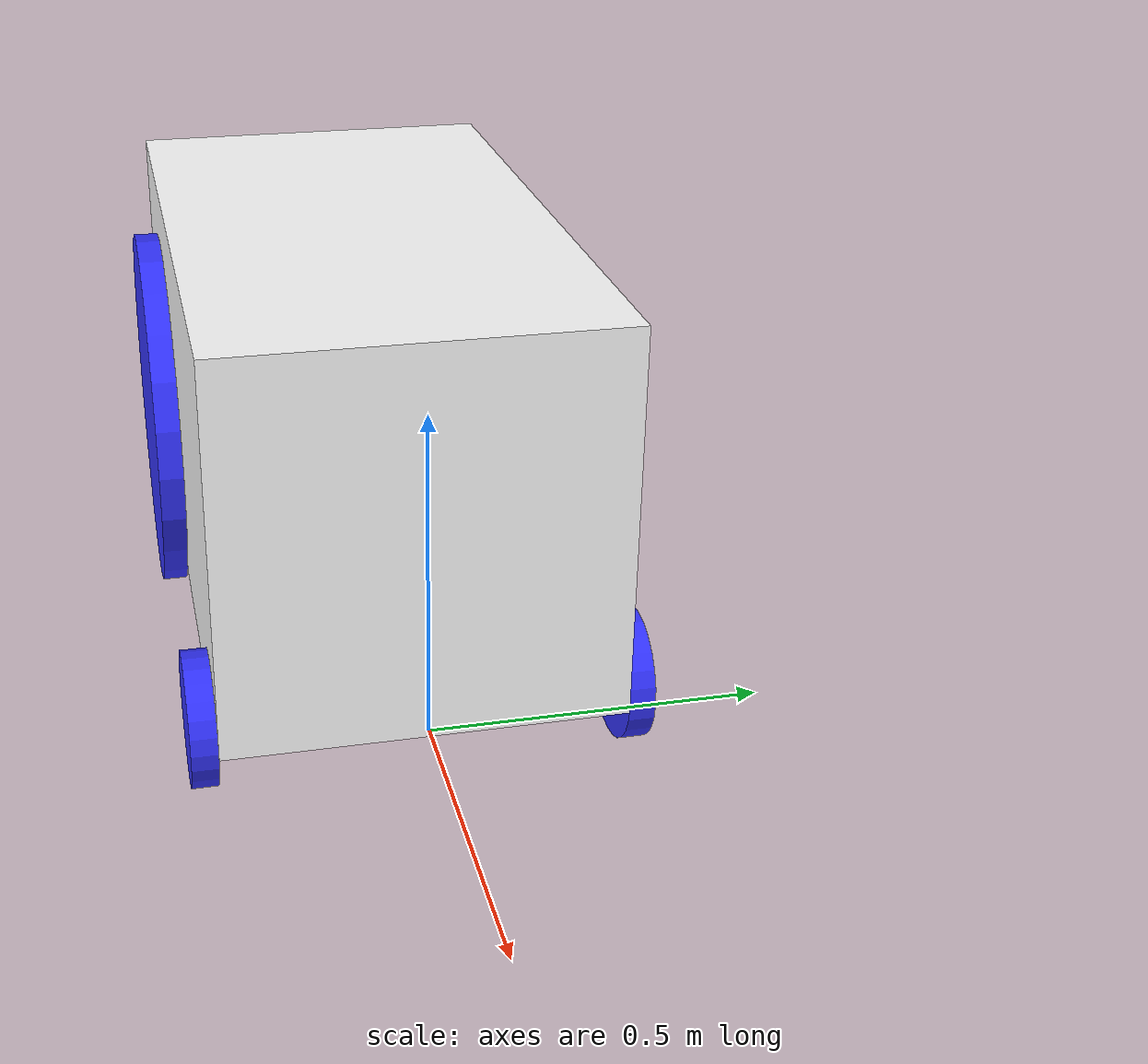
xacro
<?xml version="1.0"?>
<robot xmlns:xacro="http://www.ros.org/wiki/xacro" >

    <xacro:include filename="inertial_macros.xacro"/>

    <xacro:property name="chassis_length" value="1.1049"/>
    <xacro:property name="chassis_width" value="0.6096"/>
    <xacro:property name="chassis_height" value="0.6144"/>
    <xacro:property name="chassis_mass" value="1.0"/>
    <xacro:property name="wheel_radius" value="0.3048"/>
    <xacro:property name="wheel_thickness" value="0.0400"/>
    <xacro:property name="wheel_mass" value="0.05"/>
    <xacro:property name="wheel_offset_x" value="1.1049"/>
    <xacro:property name="wheel_offset_y" value="${wheel_thickness/2+0.3048}"/>
    <xacro:property name="wheel_offset_z" value="0.01"/>
    <xacro:property name="caster_wheel_radius" value="0.1016"/>
    <xacro:property name="caster_wheel_mass" value="0.01"/>
    <xacro:property name="caster_wheel_offset_x" value="0.14605"/>
    <xacro:property name="caster_wheel_offset_z" value="${wheel_offset_z - wheel_radius + caster_wheel_radius}"/>

    <material name="white">
        <color rgba="1 1 1 1" />
    </material>

    <material name="grey">
        <color rgba="1 1 1 1"/>
    </material>

    <material name="blue">
        <color rgba="0.2 0.2 1 1"/>
    </material>

    <material name="black">
        <color rgba="0 0 0 1"/>
    </material>

    <material name="red">
        <color rgba="1 0 0 1"/>
    </material>

    <!-- BASE LINK -->

    <link name="base_link">

    </link>

    <!-- BASE_FOOTPRINT LINK -->

    <joint name="base_footprint_joint" type="fixed">
        <parent link="base_link"/>
        <child link="base_footprint"/>
        <origin xyz="0 0 0" rpy="0 0 0"/>
    </joint>

    <link name="base_footprint"></link>

    <!-- CHASSIS LINK -->

    <joint name="chassis_joint" type="fixed">
        <parent link="base_link"/>
        <child link="chassis"/>
        <origin xyz="${-wheel_offset_x} 0 ${-wheel_offset_z}"/>
    </joint>

    <link name="chassis">
        <visual>
            <origin xyz="${chassis_length/2} 0 ${chassis_height/2}"/>
            <geometry>
                <box size="${chassis_length} ${chassis_width} ${chassis_height}"/>
            </geometry>
            <material name="grey"/>
        </visual>
        <collision>
            <origin xyz="${chassis_length/2} 0 ${chassis_height/2}"/>
            <geometry>
                <box size="${chassis_length} ${chassis_width} ${chassis_height}"/>
            </geometry>
        </collision>
        <xacro:inertial_box mass="0.5" x="${chassis_length}" y="${chassis_width}" z="${chassis_height}">
            <origin xyz="${chassis_length/2} 0 ${chassis_height/2}" rpy="0 0 0"/>
        </xacro:inertial_box>
    </link>

    <gazebo reference="chassis">
        <material>Gazebo/Grey</material>
    </gazebo>

    <!-- LEFT WHEEL LINK -->

    <joint name="left_wheel_joint" type="continuous">
        <parent link="base_link"/>
        <child link="left_wheel"/>
        <origin xyz="${-wheel_offset_x+wheel_radius} ${wheel_offset_y} ${wheel_radius-caster_wheel_radius}" rpy="-${pi/2} 0 0" />
        <axis xyz="0 0 1"/>
    </joint>

    <link name="left_wheel">
        <visual>
            <geometry>
                <cylinder radius="${wheel_radius}" length="${wheel_thickness}"/>
            </geometry>
            <material name="blue"/>
        </visual>
        <collision>
            <geometry>
                <cylinder radius="${wheel_radius}" length="${wheel_thickness}"/>
            </geometry>
        </collision>
        <xacro:inertial_cylinder mass="${wheel_mass}" length="${wheel_thickness}" radius="${wheel_radius}">
            <origin xyz="0 0 0" rpy="0 0 0"/>
        </xacro:inertial_cylinder>
    </link>

    <gazebo reference="left_wheel">
        <material>Gazebo/Blue</material>
    </gazebo>

    <!-- RIGHT WHEEL LINK -->

    <joint name="right_wheel_joint" type="continuous">
        <parent link="base_link"/>
        <child link="right_wheel"/>
        <origin xyz="${-wheel_offset_x+wheel_radius} ${-wheel_offset_y} ${wheel_radius-caster_wheel_radius}" rpy="${pi/2} 0 0" />
        <axis xyz="0 0 -1"/>
    </joint>

    <link name="right_wheel">
        <visual>
            <geometry>
                <cylinder radius="${wheel_radius}" length="${wheel_thickness}"/>
            </geometry>
            <material name="blue"/>
        </visual>
        <collision>
            <geometry>
                <cylinder radius="${wheel_radius}" length="${wheel_thickness}"/>
            </geometry>
        </collision>
        <xacro:inertial_cylinder mass="${wheel_mass}" length="${wheel_thickness}" radius="${wheel_radius}">
            <origin xyz="0 0 0" rpy="0 0 0"/>
        </xacro:inertial_cylinder>
    </link>

    <gazebo reference="right_wheel">
        <material>Gazebo/Blue</material>
    </gazebo>

    <!-- LEFT CASTER WHEEL LINK -->

    <joint name="left_caster_joint" type="fixed">
        <parent link="base_link"/>
        <child link="left_caster"/>
        <origin xyz="-${caster_wheel_radius} ${wheel_offset_y} 0" rpy="-${pi/2} 0 0" />
        <axis xyz="0 0 1"/>
    </joint>

    <link name="left_caster">
        <visual>
            <geometry>
                <cylinder radius="${caster_wheel_radius}" length="${wheel_thickness}"/>
            </geometry>
            <material name="blue"/>
        </visual>
        <collision>
            <geometry>
                <sphere radius="${caster_wheel_radius}"/>
            </geometry>
        </collision>
        <xacro:inertial_cylinder mass="${caster_wheel_mass}" length="${wheel_thickness}" radius="${caster_wheel_radius}">
            <origin xyz="0 0 0" rpy="0 0 0"/>
        </xacro:inertial_cylinder>
    </link>

    <gazebo reference="left_caster">
        <material>Gazebo/Blue</material>
        <mu1 value="0.001"/>
        <mu2 value="0.001"/>
    </gazebo>

    <!-- RIGHT CASTER WHEEL LINK -->

    <joint name="right_caster_joint" type="fixed">
        <parent link="base_link"/>
        <child link="right_caster"/>
        <origin xyz="-${caster_wheel_radius} ${-wheel_offset_y} 0" rpy="${pi/2} 0 0" />
        <axis xyz="0 0 1"/>
    </joint>

    <link name="right_caster">
        <visual>
            <geometry>
                <cylinder radius="${caster_wheel_radius}" length="${wheel_thickness}"/>
            </geometry>
            <material name="blue"/>
        </visual>
        <collision>
            <geometry>
                <sphere radius="${caster_wheel_radius}"/>
            </geometry>
        </collision>
        <xacro:inertial_cylinder mass="${caster_wheel_mass}" length="${wheel_thickness}" radius="${caster_wheel_radius}">
            <origin xyz="0 0 0" rpy="0 0 0"/>
        </xacro:inertial_cylinder>
    </link>

    <gazebo reference="right_caster">
        <material>Gazebo/Blue</material>
        <mu1 value="0.001"/>
        <mu2 value="0.001"/>
    </gazebo>

</robot>
